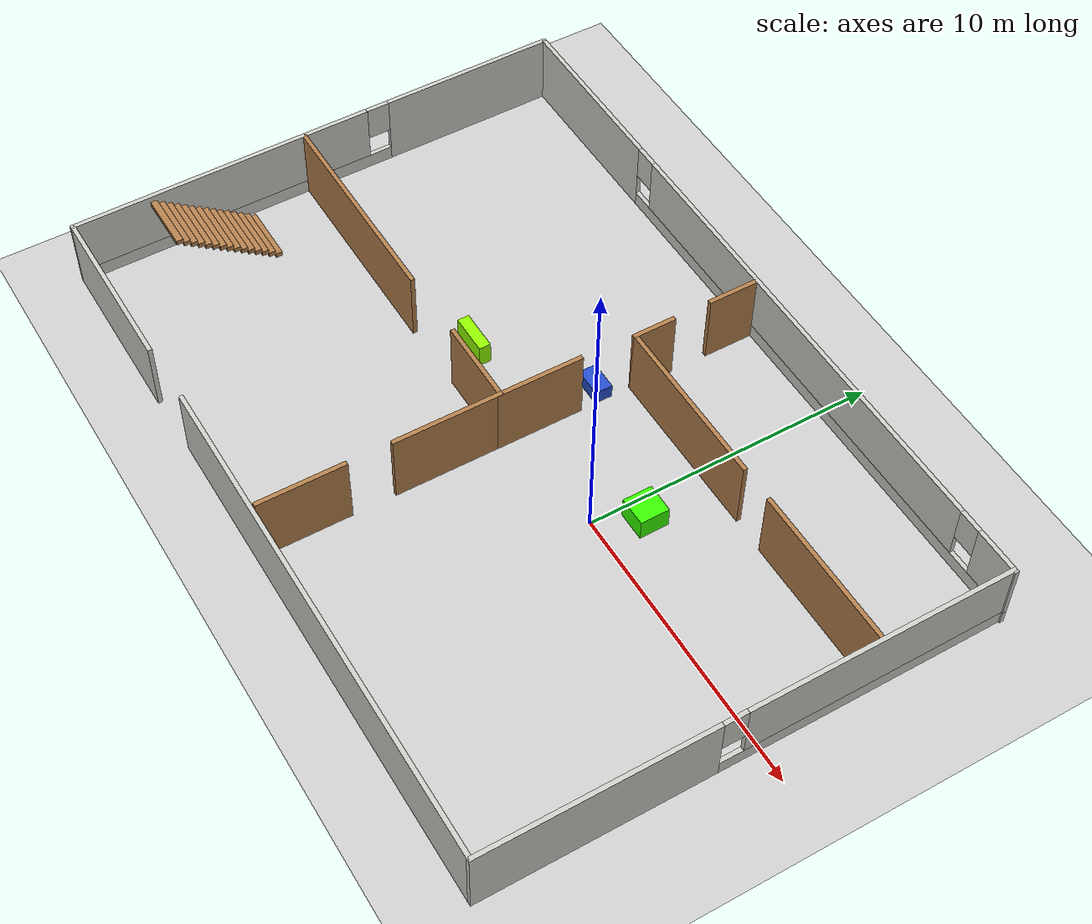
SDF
<sdf version="1.7">
 <world name="default">
  <light name="sun" type="directional">
   <pose>0 0 10 0 -0 0</pose>
   <diffuse>0.8 0.8 0.8 1</diffuse>
   <specular>0.2 0.2 0.2 1</specular>
   <attenuation>
    <range>1000</range>
    <constant>0.9</constant>
    <linear>0.01</linear>
    <quadratic>0.001</quadratic>
   </attenuation>
   <direction>-0.5 0.1 -0.9</direction>
   <spot><inner_angle>0</inner_angle><outer_angle>0</outer_angle><falloff>0</falloff></spot>
  </light>
  <model name="ground_plane">
   <static>1</static>
   <link name="link">
    <collision name="collision">
     <geometry><plane><normal>0 0 1</normal><size>100 100</size></plane></geometry>
     <surface>
      <contact><collide_bitmask>65535</collide_bitmask></contact>
      <friction><ode><mu>100</mu><mu2>50</mu2></ode></friction>
     </surface>
    </collision>
    <visual name="visual">
     <cast_shadows>0</cast_shadows>
     <geometry><plane><normal>0 0 1</normal><size>100 100</size></plane></geometry>
     <material>
      <script><uri>file://media/materials/scripts/gazebo.material</uri><name>Gazebo/Grey</name></script>
     </material>
    </visual>
   </link>
  </model>
  <gravity>0 0 -9.8</gravity>
  <magnetic_field>6e-06 2.3e-05 -4.2e-05</magnetic_field>
  <atmosphere type="adiabatic"/>
  <physics type="ode">
   <max_step_size>0.001</max_step_size>
   <real_time_factor>1</real_time_factor>
   <real_time_update_rate>1000</real_time_update_rate>
  </physics>
  <scene><ambient>0.4 0.4 0.4 1</ambient><background>0.7 0.7 0.7 1</background><shadows>1</shadows></scene>
  <spherical_coordinates>
   <surface_model>EARTH_WGS84</surface_model>
   <latitude_deg>0</latitude_deg>
   <longitude_deg>0</longitude_deg>
   <elevation>0</elevation>
   <heading_deg>0</heading_deg>
  </spherical_coordinates>
  <model name="mieszkanie">
   <pose>-3.95437 -0.38157 0 0 -0 0</pose>
   <link name="Stairs_1">
    <visual name="Stairs_1_Visual_0">
     <pose>-11.458 -2.78861 0.083333 0 -0 0</pose>
     <geometry><box><size>2 0.233333 0.166667</size></box></geometry>
     <material>
      <script><uri>file://media/materials/scripts/gazebo.material</uri><name>Gazebo/Wood</name></script>
      <ambient>1 1 1 1</ambient>
     </material>
     <meta><layer>0</layer></meta>
    </visual>
    <collision name="Stairs_1_Collision_0">
     <geometry><box><size>2 0.233333 0.166667</size></box></geometry>
     <pose>-11.458 -2.78861 0.083333 0 -0 0</pose>
    </collision>
    <visual name="Stairs_1_Visual_1">
     <pose>-11.458 -3.02194 0.25 0 -0 0</pose>
     <geometry><box><size>2 0.233333 0.166667</size></box></geometry>
     <material>
      <script><uri>file://media/materials/scripts/gazebo.material</uri><name>Gazebo/Wood</name></script>
      <ambient>1 1 1 1</ambient>
     </material>
     <meta><layer>0</layer></meta>
    </visual>
    <collision name="Stairs_1_Collision_1">
     <geometry><box><size>2 0.233333 0.166667</size></box></geometry>
     <pose>-11.458 -3.02194 0.25 0 -0 0</pose>
    </collision>
    <visual name="Stairs_1_Visual_2">
     <pose>-11.458 -3.25528 0.416667 0 -0 0</pose>
     <geometry><box><size>2 0.233333 0.166667</size></box></geometry>
     <material>
      <script><uri>file://media/materials/scripts/gazebo.material</uri><name>Gazebo/Wood</name></script>
      <ambient>1 1 1 1</ambient>
     </material>
     <meta><layer>0</layer></meta>
    </visual>
    <collision name="Stairs_1_Collision_2">
     <geometry><box><size>2 0.233333 0.166667</size></box></geometry>
     <pose>-11.458 -3.25528 0.416667 0 -0 0</pose>
    </collision>
    <visual name="Stairs_1_Visual_3">
     <pose>-11.458 -3.48861 0.583333 0 -0 0</pose>
     <geometry><box><size>2 0.233333 0.166667</size></box></geometry>
     <material>
      <script><uri>file://media/materials/scripts/gazebo.material</uri><name>Gazebo/Wood</name></script>
      <ambient>1 1 1 1</ambient>
     </material>
     <meta><layer>0</layer></meta>
    </visual>
    <collision name="Stairs_1_Collision_3">
     <geometry><box><size>2 0.233333 0.166667</size></box></geometry>
     <pose>-11.458 -3.48861 0.583333 0 -0 0</pose>
    </collision>
    <visual name="Stairs_1_Visual_4">
     <pose>-11.458 -3.72194 0.75 0 -0 0</pose>
     <geometry><box><size>2 0.233333 0.166667</size></box></geometry>
     <material>
      <script><uri>file://media/materials/scripts/gazebo.material</uri><name>Gazebo/Wood</name></script>
      <ambient>1 1 1 1</ambient>
     </material>
     <meta><layer>0</layer></meta>
    </visual>
    <collision name="Stairs_1_Collision_4">
     <geometry><box><size>2 0.233333 0.166667</size></box></geometry>
     <pose>-11.458 -3.72194 0.75 0 -0 0</pose>
    </collision>
    <visual name="Stairs_1_Visual_5">
     <pose>-11.458 -3.95528 0.916667 0 -0 0</pose>
     <geometry><box><size>2 0.233333 0.166667</size></box></geometry>
     <material>
      <script><uri>file://media/materials/scripts/gazebo.material</uri><name>Gazebo/Wood</name></script>
      <ambient>1 1 1 1</ambient>
     </material>
     <meta><layer>0</layer></meta>
    </visual>
    <collision name="Stairs_1_Collision_5">
     <geometry><box><size>2 0.233333 0.166667</size></box></geometry>
     <pose>-11.458 -3.95528 0.916667 0 -0 0</pose>
    </collision>
    <visual name="Stairs_1_Visual_6">
     <pose>-11.458 -4.18861 1.08333 0 -0 0</pose>
     <geometry><box><size>2 0.233333 0.166667</size></box></geometry>
     <material>
      <script><uri>file://media/materials/scripts/gazebo.material</uri><name>Gazebo/Wood</name></script>
      <ambient>1 1 1 1</ambient>
     </material>
     <meta><layer>0</layer></meta>
    </visual>
    <collision name="Stairs_1_Collision_6">
     <geometry><box><size>2 0.233333 0.166667</size></box></geometry>
     <pose>-11.458 -4.18861 1.08333 0 -0 0</pose>
    </collision>
    <visual name="Stairs_1_Visual_7">
     <pose>-11.458 -4.42194 1.25 0 -0 0</pose>
     <geometry><box><size>2 0.233333 0.166667</size></box></geometry>
     <material>
      <script><uri>file://media/materials/scripts/gazebo.material</uri><name>Gazebo/Wood</name></script>
      <ambient>1 1 1 1</ambient>
     </material>
     <meta><layer>0</layer></meta>
    </visual>
    <collision name="Stairs_1_Collision_7">
     <geometry><box><size>2 0.233333 0.166667</size></box></geometry>
     <pose>-11.458 -4.42194 1.25 0 -0 0</pose>
    </collision>
    <visual name="Stairs_1_Visual_8">
     <pose>-11.458 -4.65528 1.41667 0 -0 0</pose>
     <geometry><box><size>2 0.233333 0.166667</size></box></geometry>
     <material>
      <script><uri>file://media/materials/scripts/gazebo.material</uri><name>Gazebo/Wood</name></script>
      <ambient>1 1 1 1</ambient>
     </material>
     <meta><layer>0</layer></meta>
    </visual>
    <collision name="Stairs_1_Collision_8">
     <geometry><box><size>2 0.233333 0.166667</size></box></geometry>
     <pose>-11.458 -4.65528 1.41667 0 -0 0</pose>
    </collision>
    <visual name="Stairs_1_Visual_9">
     <pose>-11.458 -4.88861 1.58333 0 -0 0</pose>
     <geometry><box><size>2 0.233333 0.166667</size></box></geometry>
     <material>
      <script><uri>file://media/materials/scripts/gazebo.material</uri><name>Gazebo/Wood</name></script>
      <ambient>1 1 1 1</ambient>
     </material>
     <meta><layer>0</layer></meta>
    </visual>
    <collision name="Stairs_1_Collision_9">
     <geometry><box><size>2 0.233333 0.166667</size></box></geometry>
     <pose>-11.458 -4.88861 1.58333 0 -0 0</pose>
    </collision>
    <visual name="Stairs_1_Visual_10">
     <pose>-11.458 -5.12194 1.75 0 -0 0</pose>
     <geometry><box><size>2 0.233333 0.166667</size></box></geometry>
     <material>
      <script><uri>file://media/materials/scripts/gazebo.material</uri><name>Gazebo/Wood</name></script>
      <ambient>1 1 1 1</ambient>
     </material>
     <meta><layer>0</layer></meta>
    </visual>
    <collision name="Stairs_1_Collision_10">
     <geometry><box><size>2 0.233333 0.166667</size></box></geometry>
     <pose>-11.458 -5.12194 1.75 0 -0 0</pose>
    </collision>
    <visual name="Stairs_1_Visual_11">
     <pose>-11.458 -5.35528 1.91667 0 -0 0</pose>
     <geometry><box><size>2 0.233333 0.166667</size></box></geometry>
     <material>
      <script><uri>file://media/materials/scripts/gazebo.material</uri><name>Gazebo/Wood</name></script>
      <ambient>1 1 1 1</ambient>
     </material>
     <meta><layer>0</layer></meta>
    </visual>
    <collision name="Stairs_1_Collision_11">
     <geometry><box><size>2 0.233333 0.166667</size></box></geometry>
     <pose>-11.458 -5.35528 1.91667 0 -0 0</pose>
    </collision>
    <visual name="Stairs_1_Visual_12">
     <pose>-11.458 -5.58861 2.08333 0 -0 0</pose>
     <geometry><box><size>2 0.233333 0.166667</size></box></geometry>
     <material>
      <script><uri>file://media/materials/scripts/gazebo.material</uri><name>Gazebo/Wood</name></script>
      <ambient>1 1 1 1</ambient>
     </material>
     <meta><layer>0</layer></meta>
    </visual>
    <collision name="Stairs_1_Collision_12">
     <geometry><box><size>2 0.233333 0.166667</size></box></geometry>
     <pose>-11.458 -5.58861 2.08333 0 -0 0</pose>
    </collision>
    <visual name="Stairs_1_Visual_13">
     <pose>-11.458 -5.82194 2.25 0 -0 0</pose>
     <geometry><box><size>2 0.233333 0.166667</size></box></geometry>
     <material>
      <script><uri>file://media/materials/scripts/gazebo.material</uri><name>Gazebo/Wood</name></script>
      <ambient>1 1 1 1</ambient>
     </material>
     <meta><layer>0</layer></meta>
    </visual>
    <collision name="Stairs_1_Collision_13">
     <geometry><box><size>2 0.233333 0.166667</size></box></geometry>
     <pose>-11.458 -5.82194 2.25 0 -0 0</pose>
    </collision>
    <visual name="Stairs_1_Visual_14">
     <pose>-11.458 -6.05528 2.41667 0 -0 0</pose>
     <geometry><box><size>2 0.233333 0.166667</size></box></geometry>
     <material>
      <script><uri>file://media/materials/scripts/gazebo.material</uri><name>Gazebo/Wood</name></script>
      <ambient>1 1 1 1</ambient>
     </material>
     <meta><layer>0</layer></meta>
    </visual>
    <collision name="Stairs_1_Collision_14">
     <geometry><box><size>2 0.233333 0.166667</size></box></geometry>
     <pose>-11.458 -6.05528 2.41667 0 -0 0</pose>
    </collision>
   </link>
   <link name="Wall_16">
    <pose>-12.7625 -0 0 0 -0 -1.56653</pose>
    <visual name="Wall_16_Visual_0">
     <pose>-5.71932 0 1.25 0 -0 0</pose>
     <geometry><box><size>6.20092 0.15 2.5</size></box></geometry>
     <material>
      <script><uri>file://media/materials/scripts/gazebo.material</uri><name>Gazebo/CeilingTiled</name></script>
      <ambient>0.760784 0.662745 0.627451 1</ambient>
     </material>
     <meta><layer>0</layer></meta>
    </visual>
    <collision name="Wall_16_Collision_0">
     <geometry><box><size>6.20092 0.15 2.5</size></box></geometry>
     <pose>-5.71932 0 1.25 0 -0 0</pose>
    </collision>
    <visual name="Wall_16_Visual_1">
     <pose>3.10046 0 0.25 0 -0 0</pose>
     <geometry><box><size>11.4386 0.15 0.5</size></box></geometry>
     <material>
      <script><uri>file://media/materials/scripts/gazebo.material</uri><name>Gazebo/CeilingTiled</name></script>
      <ambient>0.760784 0.662745 0.627451 1</ambient>
     </material>
     <meta><layer>0</layer></meta>
    </visual>
    <collision name="Wall_16_Collision_1">
     <geometry><box><size>11.4386 0.15 0.5</size></box></geometry>
     <pose>3.10046 0 0.25 0 -0 0</pose>
    </collision>
    <visual name="Wall_16_Visual_2">
     <pose>3.50046 0 1.5 0 -0 0</pose>
     <geometry><box><size>10.6386 0.15 2</size></box></geometry>
     <material>
      <script><uri>file://media/materials/scripts/gazebo.material</uri><name>Gazebo/CeilingTiled</name></script>
      <ambient>0.760784 0.662745 0.627451 1</ambient>
     </material>
     <meta><layer>0</layer></meta>
    </visual>
    <collision name="Wall_16_Collision_2">
     <geometry><box><size>10.6386 0.15 2</size></box></geometry>
     <pose>3.50046 0 1.5 0 -0 0</pose>
    </collision>
    <visual name="Wall_16_Visual_3">
     <pose>-2.21886 0 1.9 0 -0 0</pose>
     <geometry><box><size>0.8 0.15 1.2</size></box></geometry>
     <material>
      <script><uri>file://media/materials/scripts/gazebo.material</uri><name>Gazebo/CeilingTiled</name></script>
      <ambient>0.760784 0.662745 0.627451 1</ambient>
     </material>
     <meta><layer>0</layer></meta>
    </visual>
    <collision name="Wall_16_Collision_3">
     <geometry><box><size>0.8 0.15 1.2</size></box></geometry>
     <pose>-2.21886 0 1.9 0 -0 0</pose>
    </collision>
   </link>
   <link name="Wall_18">
    <pose>12.7611 0.030417 0 0 -0 1.57159</pose>
    <visual name="Wall_18_Visual_0">
     <pose>-4.911 0 1.25 0 -0 0</pose>
     <geometry><box><size>7.75637 0.15 2.5</size></box></geometry>
     <material>
      <script><uri>file://media/materials/scripts/gazebo.material</uri><name>Gazebo/CeilingTiled</name></script>
      <ambient>0.760784 0.662745 0.627451 1</ambient>
     </material>
     <meta><layer>0</layer></meta>
    </visual>
    <collision name="Wall_18_Collision_0">
     <geometry><box><size>7.75637 0.15 2.5</size></box></geometry>
     <pose>-4.911 0 1.25 0 -0 0</pose>
    </collision>
    <visual name="Wall_18_Visual_1">
     <pose>3.87819 0 0.25 0 -0 0</pose>
     <geometry><box><size>9.822 0.15 0.5</size></box></geometry>
     <material>
      <script><uri>file://media/materials/scripts/gazebo.material</uri><name>Gazebo/CeilingTiled</name></script>
      <ambient>0.760784 0.662745 0.627451 1</ambient>
     </material>
     <meta><layer>0</layer></meta>
    </visual>
    <collision name="Wall_18_Collision_1">
     <geometry><box><size>9.822 0.15 0.5</size></box></geometry>
     <pose>3.87819 0 0.25 0 -0 0</pose>
    </collision>
    <visual name="Wall_18_Visual_2">
     <pose>4.27819 0 1.5 0 -0 0</pose>
     <geometry><box><size>9.022 0.15 2</size></box></geometry>
     <material>
      <script><uri>file://media/materials/scripts/gazebo.material</uri><name>Gazebo/CeilingTiled</name></script>
      <ambient>0.760784 0.662745 0.627451 1</ambient>
     </material>
     <meta><layer>0</layer></meta>
    </visual>
    <collision name="Wall_18_Collision_2">
     <geometry><box><size>9.022 0.15 2</size></box></geometry>
     <pose>4.27819 0 1.5 0 -0 0</pose>
    </collision>
    <visual name="Wall_18_Visual_3">
     <pose>-0.632815 0 1.9 0 -0 0</pose>
     <geometry><box><size>0.8 0.15 1.2</size></box></geometry>
     <material>
      <script><uri>file://media/materials/scripts/gazebo.material</uri><name>Gazebo/CeilingTiled</name></script>
      <ambient>0.760784 0.662745 0.627451 1</ambient>
     </material>
     <meta><layer>0</layer></meta>
    </visual>
    <collision name="Wall_18_Collision_3">
     <geometry><box><size>0.8 0.15 1.2</size></box></geometry>
     <pose>-0.632815 0 1.9 0 -0 0</pose>
    </collision>
   </link>
   <link name="Wall_20">
    <pose>0.00016 8.74452 0 0 -0 0</pose>
    <visual name="Wall_20_Visual_0">
     <pose>-9.73798 0 1.25 0 -0 0</pose>
     <geometry><box><size>6.27405 0.15 2.5</size></box></geometry>
     <material>
      <script><uri>file://media/materials/scripts/gazebo.material</uri><name>Gazebo/CeilingTiled</name></script>
      <ambient>0.760784 0.662745 0.627451 1</ambient>
     </material>
     <meta><layer>0</layer></meta>
    </visual>
    <collision name="Wall_20_Collision_0">
     <geometry><box><size>6.27405 0.15 2.5</size></box></geometry>
     <pose>-9.73798 0 1.25 0 -0 0</pose>
    </collision>
    <visual name="Wall_20_Visual_1">
     <pose>3.13702 0 0.25 0 -0 0</pose>
     <geometry><box><size>19.476 0.15 0.5</size></box></geometry>
     <material>
      <script><uri>file://media/materials/scripts/gazebo.material</uri><name>Gazebo/CeilingTiled</name></script>
      <ambient>0.760784 0.662745 0.627451 1</ambient>
     </material>
     <meta><layer>0</layer></meta>
    </visual>
    <collision name="Wall_20_Collision_1">
     <geometry><box><size>19.476 0.15 0.5</size></box></geometry>
     <pose>3.13702 0 0.25 0 -0 0</pose>
    </collision>
    <visual name="Wall_20_Visual_2">
     <pose>2.31293 0 1.5 0 -0 0</pose>
     <geometry><box><size>16.2278 0.15 2</size></box></geometry>
     <material>
      <script><uri>file://media/materials/scripts/gazebo.material</uri><name>Gazebo/CeilingTiled</name></script>
      <ambient>0.760784 0.662745 0.627451 1</ambient>
     </material>
     <meta><layer>0</layer></meta>
    </visual>
    <collision name="Wall_20_Collision_2">
     <geometry><box><size>16.2278 0.15 2</size></box></geometry>
     <pose>2.31293 0 1.5 0 -0 0</pose>
    </collision>
    <visual name="Wall_20_Visual_3">
     <pose>12.0509 0 1.5 0 -0 0</pose>
     <geometry><box><size>1.6482 0.15 2</size></box></geometry>
     <material>
      <script><uri>file://media/materials/scripts/gazebo.material</uri><name>Gazebo/CeilingTiled</name></script>
      <ambient>0.760784 0.662745 0.627451 1</ambient>
     </material>
     <meta><layer>0</layer></meta>
    </visual>
    <collision name="Wall_20_Collision_3">
     <geometry><box><size>1.6482 0.15 2</size></box></geometry>
     <pose>12.0509 0 1.5 0 -0 0</pose>
    </collision>
    <visual name="Wall_20_Visual_4">
     <pose>-6.20095 0 1.9 0 -0 0</pose>
     <geometry><box><size>0.8 0.15 1.2</size></box></geometry>
     <material>
      <script><uri>file://media/materials/scripts/gazebo.material</uri><name>Gazebo/CeilingTiled</name></script>
      <ambient>0.760784 0.662745 0.627451 1</ambient>
     </material>
     <meta><layer>0</layer></meta>
    </visual>
    <collision name="Wall_20_Collision_4">
     <geometry><box><size>0.8 0.15 1.2</size></box></geometry>
     <pose>-6.20095 0 1.9 0 -0 0</pose>
    </collision>
    <visual name="Wall_20_Visual_5">
     <pose>10.8268 0 1.9 0 -0 0</pose>
     <geometry><box><size>0.8 0.15 1.2</size></box></geometry>
     <material>
      <script><uri>file://media/materials/scripts/gazebo.material</uri><name>Gazebo/CeilingTiled</name></script>
      <ambient>0.760784 0.662745 0.627451 1</ambient>
     </material>
     <meta><layer>0</layer></meta>
    </visual>
    <collision name="Wall_20_Collision_5">
     <geometry><box><size>0.8 0.15 1.2</size></box></geometry>
     <pose>10.8268 0 1.9 0 -0 0</pose>
    </collision>
   </link>
   <link name="Wall_30">
    <collision name="Wall_30_Collision">
     <geometry><box><size>1.75 0.15 2.5</size></box></geometry>
     <pose>0 0 1.25 0 -0 0</pose>
    </collision>
    <visual name="Wall_30_Visual">
     <pose>0 0 1.25 0 -0 0</pose>
     <geometry><box><size>1.75 0.15 2.5</size></box></geometry>
     <material>
      <script><uri>file://media/materials/scripts/gazebo.material</uri><name>Gazebo/Wood</name></script>
      <ambient>0.435294 0.796078 0.67451 1</ambient>
     </material>
     <meta><layer>0</layer></meta>
    </visual>
    <pose>0.156718 7.82904 0 0 -0 -1.5708</pose>
   </link>
   <link name="Wall_44">
    <collision name="Wall_44_Collision">
     <geometry><box><size>3 0.15 2.5</size></box></geometry>
     <pose>0 0 1.25 0 -0 0</pose>
    </collision>
    <visual name="Wall_44_Visual">
     <pose>0 0 1.25 0 -0 0</pose>
     <geometry><box><size>3 0.15 2.5</size></box></geometry>
     <material>
      <script><uri>file://media/materials/scripts/gazebo.material</uri><name>Gazebo/Wood</name></script>
      <ambient>1 0.764706 0.305882 1</ambient>
     </material>
     <meta><layer>0</layer></meta>
    </visual>
    <pose>0.067551 0.913585 0 0 -0 -1.5708</pose>
   </link>
   <link name="Wall_46">
    <collision name="Wall_46_Collision">
     <geometry><box><size>7.5 0.15 2.5</size></box></geometry>
     <pose>0 0 1.25 0 -0 0</pose>
    </collision>
    <visual name="Wall_46_Visual">
     <pose>0 0 1.25 0 -0 0</pose>
     <geometry><box><size>7.5 0.15 2.5</size></box></geometry>
     <material>
      <script><uri>file://media/materials/scripts/gazebo.material</uri><name>Gazebo/Wood</name></script>
      <ambient>1 0.764706 0.305882 1</ambient>
     </material>
     <meta><layer>0</layer></meta>
    </visual>
    <pose>-9.01955 -0.509106 0 0 -0 0</pose>
   </link>
   <link name="Wall_49">
    <collision name="Wall_49_Collision">
     <geometry><box><size>3 0.15 2.5</size></box></geometry>
     <pose>0 0 1.25 0 -0 0</pose>
    </collision>
    <visual name="Wall_49_Visual">
     <pose>0 0 1.25 0 -0 0</pose>
     <geometry><box><size>3 0.15 2.5</size></box></geometry>
     <material>
      <script><uri>file://media/materials/scripts/gazebo.material</uri><name>Gazebo/Wood</name></script>
      <ambient>1 0.764706 0.305882 1</ambient>
     </material>
     <meta><layer>0</layer></meta>
    </visual>
    <pose>-1.36125 -0.439552 0 0 -0 0</pose>
   </link>
   <link name="Wall_51">
    <collision name="Wall_51_Collision">
     <geometry><box><size>3.75 0.15 2.5</size></box></geometry>
     <pose>0 0 1.25 0 -0 0</pose>
    </collision>
    <visual name="Wall_51_Visual">
     <pose>0 0 1.25 0 -0 0</pose>
     <geometry><box><size>3.75 0.15 2.5</size></box></geometry>
     <material>
      <script><uri>file://media/materials/scripts/gazebo.material</uri><name>Gazebo/Wood</name></script>
      <ambient>1 1 1 1</ambient>
     </material>
     <meta><layer>0</layer></meta>
    </visual>
    <pose>0.063748 -2.23955 0 0 -0 -1.5708</pose>
   </link>
   <link name="Wall_53">
    <collision name="Wall_53_Collision">
     <geometry><box><size>3 0.15 2.5</size></box></geometry>
     <pose>0 0 1.25 0 -0 0</pose>
    </collision>
    <visual name="Wall_53_Visual">
     <pose>0 0 1.25 0 -0 0</pose>
     <geometry><box><size>3 0.15 2.5</size></box></geometry>
     <material>
      <script><uri>file://media/materials/scripts/gazebo.material</uri><name>Gazebo/Wood</name></script>
      <ambient>1 1 1 1</ambient>
     </material>
     <meta><layer>0</layer></meta>
    </visual>
    <pose>0.058871 -7.06873 0 0 -0 1.5708</pose>
   </link>
   <link name="Wall_57">
    <collision name="Wall_57_Collision">
     <geometry><box><size>6 0.15 2.5</size></box></geometry>
     <pose>0 0 1.25 0 -0 0</pose>
    </collision>
    <visual name="Wall_57_Visual">
     <pose>0 0 1.25 0 -0 0</pose>
     <geometry><box><size>6 0.15 2.5</size></box></geometry>
     <material>
      <script><uri>file://media/materials/scripts/gazebo.material</uri><name>Gazebo/Wood</name></script>
      <ambient>1 1 1 1</ambient>
     </material>
     <meta><layer>0</layer></meta>
    </visual>
    <pose>3.08966 4.25031 0 0 -0 0</pose>
   </link>
   <link name="Wall_59">
    <collision name="Wall_59_Collision">
     <geometry><box><size>5.5 0.15 2.5</size></box></geometry>
     <pose>0 0 1.25 0 -0 0</pose>
    </collision>
    <visual name="Wall_59_Visual">
     <pose>0 0 1.25 0 -0 0</pose>
     <geometry><box><size>5.5 0.15 2.5</size></box></geometry>
     <material>
      <script><uri>file://media/materials/scripts/gazebo.material</uri><name>Gazebo/Wood</name></script>
      <ambient>1 1 1 1</ambient>
     </material>
     <meta><layer>0</layer></meta>
    </visual>
    <pose>10.021 4.23773 0 0 -0 0</pose>
   </link>
   <link name="Wall_63">
    <collision name="Wall_63_Collision">
     <geometry><box><size>1.5 0.15 2.5</size></box></geometry>
     <pose>0 0 1.25 0 -0 0</pose>
    </collision>
    <visual name="Wall_63_Visual">
     <pose>0 0 1.25 0 -0 0</pose>
     <geometry><box><size>1.5 0.15 2.5</size></box></geometry>
     <material>
      <script><uri>file://media/materials/scripts/gazebo.material</uri><name>Gazebo/Wood</name></script>
      <ambient>1 1 1 1</ambient>
     </material>
     <meta><layer>0</layer></meta>
    </visual>
    <pose>0.164658 4.92531 0 0 -0 1.5708</pose>
   </link>
   <link name="Wall_73">
    <collision name="Wall_73_Collision">
     <geometry><box><size>6 0.15 2.5</size></box></geometry>
     <pose>0 0 1.25 0 -0 0</pose>
    </collision>
    <visual name="Wall_73_Visual">
     <pose>0 0 1.25 0 -0 0</pose>
     <geometry><box><size>6 0.15 2.5</size></box></geometry>
     <material>
      <script><uri>file://media/materials/scripts/gazebo.material</uri><name>Gazebo/CeilingTiled</name></script>
      <ambient>1 1 1 1</ambient>
     </material>
     <meta><layer>0</layer></meta>
    </visual>
    <pose>-9.73937 -8.74452 0 0 -0 0</pose>
   </link>
   <link name="Wall_75">
    <collision name="Wall_75_Collision">
     <geometry><box><size>17.454 0.15 2.5</size></box></geometry>
     <pose>0 0 1.25 0 -0 0</pose>
    </collision>
    <visual name="Wall_75_Visual">
     <pose>0 0 1.25 0 -0 0</pose>
     <geometry><box><size>17.454 0.15 2.5</size></box></geometry>
     <material>
      <script><uri>file://media/materials/scripts/gazebo.material</uri><name>Gazebo/CeilingTiled</name></script>
      <ambient>1 1 1 1</ambient>
     </material>
     <meta><layer>0</layer></meta>
    </visual>
    <pose>4.06996 -8.68368 0 0 -0 0</pose>
   </link>
   <static>1</static>
  </model>
  <model name="table_0">
   <link name="link">
    <inertial>
     <mass>1</mass>
     <inertia>
      <ixx>0.166667</ixx>
      <ixy>0</ixy>
      <ixz>0</ixz>
      <iyy>0.166667</iyy>
      <iyz>0</iyz>
      <izz>0.166667</izz>
     </inertia>
    </inertial>
    <pose>1e-06 0 0 0 -0 0</pose>
    <visual name="visual">
     <geometry><box><size>1 0.6 0.5</size></box></geometry>
     <material>
      <lighting>1</lighting>
      <script><uri>file://media/materials/scripts/gazebo.material</uri><name>Gazebo/Blue</name></script>
      <shader type="pixel"><normal_map>__default__</normal_map></shader>
      <ambient>0.251 1 0.914 1</ambient>
      <diffuse>0.251 1 0.914 1</diffuse>
      <specular>0.251 1 0.914 1</specular>
      <emissive>0.251 1 0.914 1</emissive>
     </material>
    </visual>
    <collision name="collision">
     <geometry><box><size>1 0.6 0.5</size></box></geometry>
     <surface>
      <friction>
       <ode><mu>1</mu><mu2>1</mu2><fdir1>0 0 0</fdir1><slip1>0</slip1><slip2>0</slip2></ode>
       <torsional>
        <coefficient>1</coefficient>
        <patch_radius>0</patch_radius>
        <surface_radius>0</surface_radius>
        <use_patch_radius>1</use_patch_radius>
        <ode><slip>0</slip></ode>
       </torsional>
      </friction>
      <bounce><restitution_coefficient>0</restitution_coefficient><threshold>1e+06</threshold></bounce>
      <contact>
       <collide_without_contact>0</collide_without_contact>
       <collide_without_contact_bitmask>1</collide_without_contact_bitmask>
       <collide_bitmask>1</collide_bitmask>
       <ode>
        <soft_cfm>0</soft_cfm>
        <soft_erp>0.2</soft_erp>
        <kp>1e+13</kp>
        <kd>1</kd>
        <max_vel>0.01</max_vel>
        <min_depth>0</min_depth>
       </ode>
       <bullet>
        <split_impulse>1</split_impulse>
        <split_impulse_penetration_threshold>-0.01</split_impulse_penetration_threshold>
        <soft_cfm>0</soft_cfm>
        <soft_erp>0.2</soft_erp>
        <kp>1e+13</kp>
        <kd>1</kd>
       </bullet>
      </contact>
     </surface>
    </collision>
   </link>
   <static>1</static>
   <pose>-4.31989 2.84109 0.265 0 -0 0</pose>
  </model>
  <model name="table_1">
   <link name="link">
    <inertial>
     <mass>1</mass>
     <inertia>
      <ixx>0.166667</ixx>
      <ixy>0</ixy>
      <ixz>0</ixz>
      <iyy>0.166667</iyy>
      <iyz>0</iyz>
      <izz>0.166667</izz>
     </inertia>
    </inertial>
    <visual name="visual">
     <geometry><box><size>1.4 0.4 0.8</size></box></geometry>
     <material>
      <lighting>1</lighting>
      <script><uri>file://media/materials/scripts/gazebo.material</uri><name>Gazebo/Grey</name></script>
      <shader type="pixel"><normal_map>__default__</normal_map></shader>
      <ambient>0.569 1 0 1</ambient>
      <diffuse>0.569 1 0 1</diffuse>
      <specular>0.569 1 0 1</specular>
      <emissive>0.569 1 0 1</emissive>
     </material>
    </visual>
    <collision name="collision">
     <geometry><box><size>1.4 0.4 0.8</size></box></geometry>
     <surface>
      <friction>
       <ode><mu>1</mu><mu2>1</mu2><fdir1>0 0 0</fdir1><slip1>0</slip1><slip2>0</slip2></ode>
       <torsional>
        <coefficient>1</coefficient>
        <patch_radius>0</patch_radius>
        <surface_radius>0</surface_radius>
        <use_patch_radius>1</use_patch_radius>
        <ode><slip>0</slip></ode>
       </torsional>
      </friction>
      <bounce><restitution_coefficient>0</restitution_coefficient><threshold>1e+06</threshold></bounce>
      <contact>
       <collide_without_contact>0</collide_without_contact>
       <collide_without_contact_bitmask>1</collide_without_contact_bitmask>
       <collide_bitmask>1</collide_bitmask>
       <ode>
        <soft_cfm>0</soft_cfm>
        <soft_erp>0.2</soft_erp>
        <kp>1e+13</kp>
        <kd>1</kd>
        <max_vel>0.01</max_vel>
        <min_depth>0</min_depth>
       </ode>
       <bullet>
        <split_impulse>1</split_impulse>
        <split_impulse_penetration_threshold>-0.01</split_impulse_penetration_threshold>
        <soft_cfm>0</soft_cfm>
        <soft_erp>0.2</soft_erp>
        <kp>1e+13</kp>
        <kd>1</kd>
       </bullet>
      </contact>
     </surface>
    </collision>
   </link>
   <static>1</static>
   <pose>-7.67381 0.398058 0.415 0 -0 0</pose>
  </model>
  <model name="table_2">
   <link name="link">
    <inertial>
     <mass>1</mass>
     <inertia>
      <ixx>0.166667</ixx>
      <ixy>0</ixy>
      <ixz>0</ixz>
      <iyy>0.166667</iyy>
      <iyz>0</iyz>
      <izz>0.166667</izz>
     </inertia>
    </inertial>
    <visual name="visual">
     <geometry><box><size>1 1 0.75</size></box></geometry>
     <material>
      <lighting>1</lighting>
      <script><uri>file://media/materials/scripts/gazebo.material</uri><name>Gazebo/Grey</name></script>
      <shader type="pixel"><normal_map>__default__</normal_map></shader>
      <ambient>0.216 1 0 1</ambient>
      <diffuse>0.216 1 0 1</diffuse>
      <specular>0.216 1 0 1</specular>
      <emissive>0.216 1 0 1</emissive>
     </material>
    </visual>
    <collision name="collision">
     <geometry><box><size>1 1 0.75</size></box></geometry>
     <surface>
      <friction>
       <ode><mu>1</mu><mu2>1</mu2><fdir1>0 0 0</fdir1><slip1>0</slip1><slip2>0</slip2></ode>
       <torsional>
        <coefficient>1</coefficient>
        <patch_radius>0</patch_radius>
        <surface_radius>0</surface_radius>
        <use_patch_radius>1</use_patch_radius>
        <ode><slip>0</slip></ode>
       </torsional>
      </friction>
      <bounce><restitution_coefficient>0</restitution_coefficient><threshold>1e+06</threshold></bounce>
      <contact>
       <collide_without_contact>0</collide_without_contact>
       <collide_without_contact_bitmask>1</collide_without_contact_bitmask>
       <collide_bitmask>1</collide_bitmask>
       <ode>
        <soft_cfm>0</soft_cfm>
        <soft_erp>0.2</soft_erp>
        <kp>1e+13</kp>
        <kd>1</kd>
        <max_vel>0.01</max_vel>
        <min_depth>0</min_depth>
       </ode>
       <bullet>
        <split_impulse>1</split_impulse>
        <split_impulse_penetration_threshold>-0.01</split_impulse_penetration_threshold>
        <soft_cfm>0</soft_cfm>
        <soft_erp>0.2</soft_erp>
        <kp>1e+13</kp>
        <kd>1</kd>
       </bullet>
      </contact>
     </surface>
    </collision>
   </link>
   <static>1</static>
   <pose>0.71986 1.47644 0.39 0 -0 0</pose>
  </model>
 </world>
</sdf>
